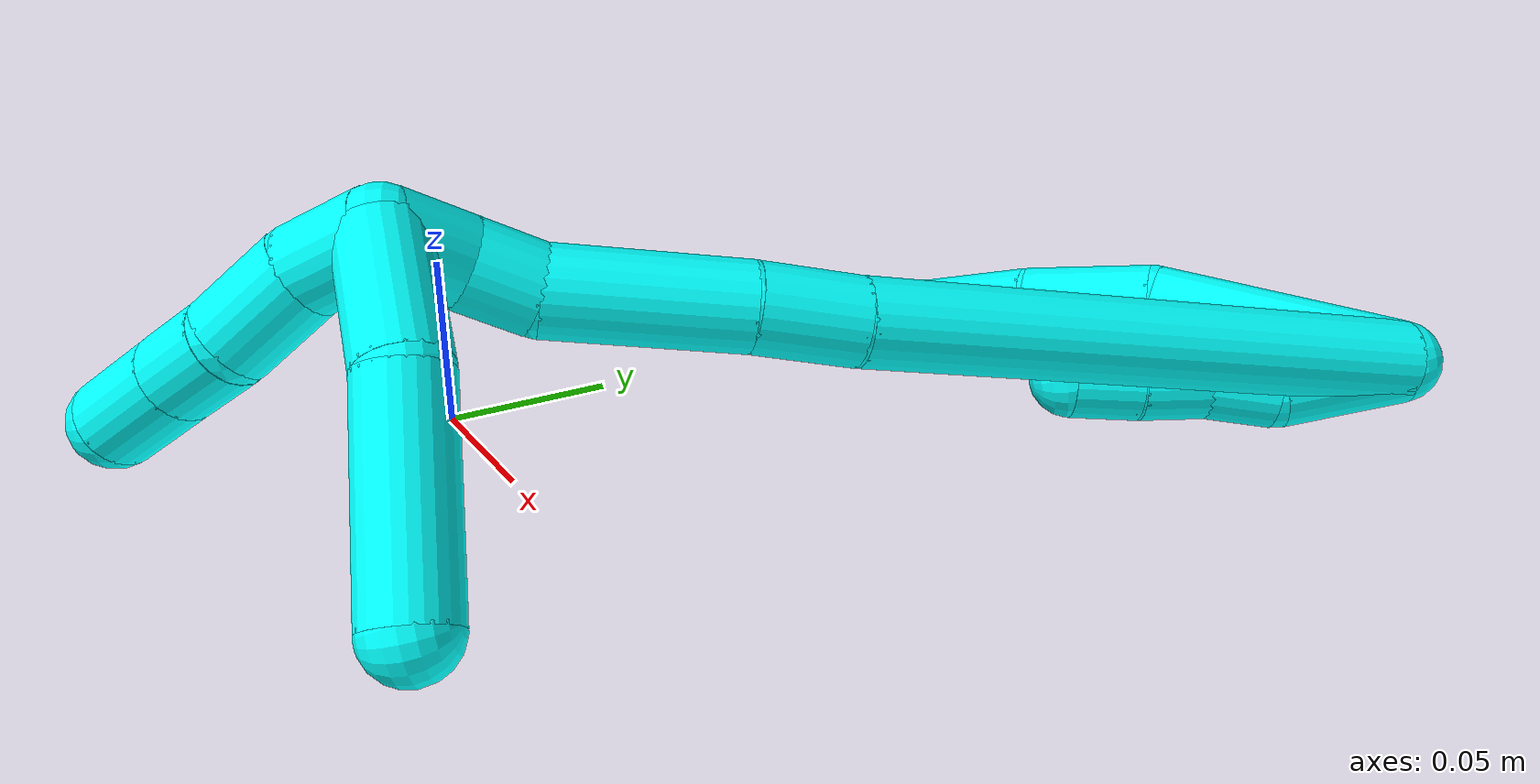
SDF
<sdf version="1.7">
 <world name="default">
  <model name="3">
   <static>0</static>
   <link name="3">
    <collision name="collision-cylinder-e_1_2_8">
     <pose>-0.018453 0.008707 -0.031408 -2.87117 -0.515175 2.18821</pose>
     <geometry><cylinder><radius>0.0125</radius><length>0.074908</length></cylinder></geometry>
     <surface>
      <friction><ode><mu>1.16</mu><mu2>1.16</mu2><slip1>0</slip1><slip2>0</slip2></ode></friction>
      <contact><ode><kp>1e+06</kp><kd>1</kd><max_vel>0</max_vel><min_depth>0.001</min_depth></ode></contact>
     </surface>
    </collision>
    <visual name="visual-cylinder-e_1_2_8">
     <pose>-0.018453 0.008707 -0.031408 -2.87117 -0.515175 2.18821</pose>
     <geometry><cylinder><radius>0.0125</radius><length>0.074908</length></cylinder></geometry>
     <material><ambient>0.003922 1 0.996078 1</ambient></material>
    </visual>
    <collision name="collision-cylinder-e_2_8_9">
     <pose>-0.042312 0.023733 -0.080801 -2.80368 -0.276342 1.36787</pose>
     <geometry><cylinder><radius>0.0125</radius><length>0.039629</length></cylinder></geometry>
     <surface>
      <friction><ode><mu>1.16</mu><mu2>1.16</mu2><slip1>0</slip1><slip2>0</slip2></ode></friction>
      <contact><ode><kp>1e+06</kp><kd>1</kd><max_vel>0</max_vel><min_depth>0.001</min_depth></ode></contact>
     </surface>
    </collision>
    <visual name="visual-cylinder-e_2_8_9">
     <pose>-0.042312 0.023733 -0.080801 -2.80368 -0.276342 1.36787</pose>
     <geometry><cylinder><radius>0.0125</radius><length>0.039629</length></cylinder></geometry>
     <material><ambient>0.003922 1 0.996078 1</ambient></material>
    </visual>
    <collision name="collision-cylinder-e_3_9_6">
     <pose>-0.051448 0.037731 -0.114328 -2.68275 -0.211912 0.854693</pose>
     <geometry><cylinder><radius>0.0125</radius><length>0.035463</length></cylinder></geometry>
     <surface>
      <friction><ode><mu>1.16</mu><mu2>1.16</mu2><slip1>0</slip1><slip2>0</slip2></ode></friction>
      <contact><ode><kp>1e+06</kp><kd>1</kd><max_vel>0</max_vel><min_depth>0.001</min_depth></ode></contact>
     </surface>
    </collision>
    <visual name="visual-cylinder-e_3_9_6">
     <pose>-0.051448 0.037731 -0.114328 -2.68275 -0.211912 0.854693</pose>
     <geometry><cylinder><radius>0.0125</radius><length>0.035463</length></cylinder></geometry>
     <material><ambient>0.003922 1 0.996078 1</ambient></material>
    </visual>
    <collision name="collision-cylinder-e_1_2_10">
     <pose>-2.6e-05 -0.000161 -0.019312 3.13324 -0.001372 -0.325381</pose>
     <geometry><cylinder><radius>0.0125</radius><length>0.038626</length></cylinder></geometry>
     <surface>
      <friction><ode><mu>1.16</mu><mu2>1.16</mu2><slip1>0</slip1><slip2>0</slip2></ode></friction>
      <contact><ode><kp>1e+06</kp><kd>1</kd><max_vel>0</max_vel><min_depth>0.001</min_depth></ode></contact>
     </surface>
    </collision>
    <visual name="visual-cylinder-e_1_2_10">
     <pose>-2.6e-05 -0.000161 -0.019312 3.13324 -0.001372 -0.325381</pose>
     <geometry><cylinder><radius>0.0125</radius><length>0.038626</length></cylinder></geometry>
     <material><ambient>0.003922 1 0.996078 1</ambient></material>
    </visual>
    <collision name="collision-cylinder-e_2_10_11">
     <pose>-0.003435 -0.000659 -0.048324 3.10695 -0.335293 -2.93758</pose>
     <geometry><cylinder><radius>0.0125</radius><length>0.020556</length></cylinder></geometry>
     <surface>
      <friction><ode><mu>1.16</mu><mu2>1.16</mu2><slip1>0</slip1><slip2>0</slip2></ode></friction>
      <contact><ode><kp>1e+06</kp><kd>1</kd><max_vel>0</max_vel><min_depth>0.001</min_depth></ode></contact>
     </surface>
    </collision>
    <visual name="visual-cylinder-e_2_10_11">
     <pose>-0.003435 -0.000659 -0.048324 3.10695 -0.335293 -2.93758</pose>
     <geometry><cylinder><radius>0.0125</radius><length>0.020556</length></cylinder></geometry>
     <material><ambient>0.003922 1 0.996078 1</ambient></material>
    </visual>
    <collision name="collision-cylinder-e_3_11_12">
     <pose>-0.008447 -0.001703 -0.068139 3.07177 -0.159413 -2.31716</pose>
     <geometry><cylinder><radius>0.0125</radius><length>0.02054</length></cylinder></geometry>
     <surface>
      <friction><ode><mu>1.16</mu><mu2>1.16</mu2><slip1>0</slip1><slip2>0</slip2></ode></friction>
      <contact><ode><kp>1e+06</kp><kd>1</kd><max_vel>0</max_vel><min_depth>0.001</min_depth></ode></contact>
     </surface>
    </collision>
    <visual name="visual-cylinder-e_3_11_12">
     <pose>-0.008447 -0.001703 -0.068139 3.07177 -0.159413 -2.31716</pose>
     <geometry><cylinder><radius>0.0125</radius><length>0.02054</length></cylinder></geometry>
     <material><ambient>0.003922 1 0.996078 1</ambient></material>
    </visual>
    <collision name="collision-cylinder-e_4_12_5">
     <pose>-0.012429 -0.0031 -0.088093 3.07156 -0.234038 -2.56235</pose>
     <geometry><cylinder><radius>0.0125</radius><length>0.020279</length></cylinder></geometry>
     <surface>
      <friction><ode><mu>1.16</mu><mu2>1.16</mu2><slip1>0</slip1><slip2>0</slip2></ode></friction>
      <contact><ode><kp>1e+06</kp><kd>1</kd><max_vel>0</max_vel><min_depth>0.001</min_depth></ode></contact>
     </surface>
    </collision>
    <visual name="visual-cylinder-e_4_12_5">
     <pose>-0.012429 -0.0031 -0.088093 3.07156 -0.234038 -2.56235</pose>
     <geometry><cylinder><radius>0.0125</radius><length>0.020279</length></cylinder></geometry>
     <material><ambient>0.003922 1 0.996078 1</ambient></material>
    </visual>
    <collision name="collision-cylinder-e_1_2_13">
     <pose>-0.01418 -0.029205 -0.080001 2.79157 -0.164986 -0.874781</pose>
     <geometry><cylinder><radius>0.0125</radius><length>0.172675</length></cylinder></geometry>
     <surface>
      <friction><ode><mu>1.16</mu><mu2>1.16</mu2><slip1>0</slip1><slip2>0</slip2></ode></friction>
      <contact><ode><kp>1e+06</kp><kd>1</kd><max_vel>0</max_vel><min_depth>0.001</min_depth></ode></contact>
     </surface>
    </collision>
    <visual name="visual-cylinder-e_1_2_13">
     <pose>-0.01418 -0.029205 -0.080001 2.79157 -0.164986 -0.874781</pose>
     <geometry><cylinder><radius>0.0125</radius><length>0.172675</length></cylinder></geometry>
     <material><ambient>0.003922 1 0.996078 1</ambient></material>
    </visual>
    <collision name="collision-cylinder-e_2_13_14">
     <pose>-0.031894 -0.063014 -0.173674 2.81675 -0.240244 -1.26973</pose>
     <geometry><cylinder><radius>0.0125</radius><length>0.029707</length></cylinder></geometry>
     <surface>
      <friction><ode><mu>1.16</mu><mu2>1.16</mu2><slip1>0</slip1><slip2>0</slip2></ode></friction>
      <contact><ode><kp>1e+06</kp><kd>1</kd><max_vel>0</max_vel><min_depth>0.001</min_depth></ode></contact>
     </surface>
    </collision>
    <visual name="visual-cylinder-e_2_13_14">
     <pose>-0.031894 -0.063014 -0.173674 2.81675 -0.240244 -1.26973</pose>
     <geometry><cylinder><radius>0.0125</radius><length>0.029707</length></cylinder></geometry>
     <material><ambient>0.003922 1 0.996078 1</ambient></material>
    </visual>
    <collision name="collision-cylinder-e_3_14_15">
     <pose>-0.041218 -0.073808 -0.213538 2.90953 -0.211891 -1.47923</pose>
     <geometry><cylinder><radius>0.0125</radius><length>0.055058</length></cylinder></geometry>
     <surface>
      <friction><ode><mu>1.16</mu><mu2>1.16</mu2><slip1>0</slip1><slip2>0</slip2></ode></friction>
      <contact><ode><kp>1e+06</kp><kd>1</kd><max_vel>0</max_vel><min_depth>0.001</min_depth></ode></contact>
     </surface>
    </collision>
    <visual name="visual-cylinder-e_3_14_15">
     <pose>-0.041218 -0.073808 -0.213538 2.90953 -0.211891 -1.47923</pose>
     <geometry><cylinder><radius>0.0125</radius><length>0.055058</length></cylinder></geometry>
     <material><ambient>0.003922 1 0.996078 1</ambient></material>
    </visual>
    <collision name="collision-cylinder-e_4_15_16">
     <pose>-0.051238 -0.084044 -0.248103 2.69147 -0.4269 -1.51611</pose>
     <geometry><cylinder><radius>0.0125</radius><length>0.020433</length></cylinder></geometry>
     <surface>
      <friction><ode><mu>1.16</mu><mu2>1.16</mu2><slip1>0</slip1><slip2>0</slip2></ode></friction>
      <contact><ode><kp>1e+06</kp><kd>1</kd><max_vel>0</max_vel><min_depth>0.001</min_depth></ode></contact>
     </surface>
    </collision>
    <visual name="visual-cylinder-e_4_15_16">
     <pose>-0.051238 -0.084044 -0.248103 2.69147 -0.4269 -1.51611</pose>
     <geometry><cylinder><radius>0.0125</radius><length>0.020433</length></cylinder></geometry>
     <material><ambient>0.003922 1 0.996078 1</ambient></material>
    </visual>
    <collision name="collision-cylinder-e_5_16_1">
     <pose>-0.058362 -0.095361 -0.264297 2.39264 -0.264696 -0.65319</pose>
     <geometry><cylinder><radius>0.0125</radius><length>0.022128</length></cylinder></geometry>
     <surface>
      <friction><ode><mu>1.16</mu><mu2>1.16</mu2><slip1>0</slip1><slip2>0</slip2></ode></friction>
      <contact><ode><kp>1e+06</kp><kd>1</kd><max_vel>0</max_vel><min_depth>0.001</min_depth></ode></contact>
     </surface>
    </collision>
    <visual name="visual-cylinder-e_5_16_1">
     <pose>-0.058362 -0.095361 -0.264297 2.39264 -0.264696 -0.65319</pose>
     <geometry><cylinder><radius>0.0125</radius><length>0.022128</length></cylinder></geometry>
     <material><ambient>0.003922 1 0.996078 1</ambient></material>
    </visual>
    <collision name="collision-cylinder-e_1_1_17">
     <pose>-0.042018 -0.107582 -0.270743 1.2998 1.30985 1.05672</pose>
     <geometry><cylinder><radius>0.0125</radius><length>0.039826</length></cylinder></geometry>
     <surface>
      <friction><ode><mu>1.16</mu><mu2>1.16</mu2><slip1>0</slip1><slip2>0</slip2></ode></friction>
      <contact><ode><kp>1e+06</kp><kd>1</kd><max_vel>0</max_vel><min_depth>0.001</min_depth></ode></contact>
     </surface>
    </collision>
    <visual name="visual-cylinder-e_1_1_17">
     <pose>-0.042018 -0.107582 -0.270743 1.2998 1.30985 1.05672</pose>
     <geometry><cylinder><radius>0.0125</radius><length>0.039826</length></cylinder></geometry>
     <material><ambient>0.003922 1 0.996078 1</ambient></material>
    </visual>
    <collision name="collision-cylinder-e_2_17_4">
     <pose>0.007134 -0.113346 -0.272494 2.88682 1.46321 2.85819</pose>
     <geometry><cylinder><radius>0.0125</radius><length>0.060174</length></cylinder></geometry>
     <surface>
      <friction><ode><mu>1.16</mu><mu2>1.16</mu2><slip1>0</slip1><slip2>0</slip2></ode></friction>
      <contact><ode><kp>1e+06</kp><kd>1</kd><max_vel>0</max_vel><min_depth>0.001</min_depth></ode></contact>
     </surface>
    </collision>
    <visual name="visual-cylinder-e_2_17_4">
     <pose>0.007134 -0.113346 -0.272494 2.88682 1.46321 2.85819</pose>
     <geometry><cylinder><radius>0.0125</radius><length>0.060174</length></cylinder></geometry>
     <material><ambient>0.003922 1 0.996078 1</ambient></material>
    </visual>
    <collision name="collision-cylinder-e_1_1_18">
     <pose>-0.060206 -0.09797 -0.283228 -2.7443 0.086952 -0.425681</pose>
     <geometry><cylinder><radius>0.0125</radius><length>0.024187</length></cylinder></geometry>
     <surface>
      <friction><ode><mu>1.16</mu><mu2>1.16</mu2><slip1>0</slip1><slip2>0</slip2></ode></friction>
      <contact><ode><kp>1e+06</kp><kd>1</kd><max_vel>0</max_vel><min_depth>0.001</min_depth></ode></contact>
     </surface>
    </collision>
    <visual name="visual-cylinder-e_1_1_18">
     <pose>-0.060206 -0.09797 -0.283228 -2.7443 0.086952 -0.425681</pose>
     <geometry><cylinder><radius>0.0125</radius><length>0.024187</length></cylinder></geometry>
     <material><ambient>0.003922 1 0.996078 1</ambient></material>
    </visual>
    <collision name="collision-cylinder-e_2_18_19">
     <pose>-0.053802 -0.089002 -0.30601 -2.78811 0.406382 -1.71317</pose>
     <geometry><cylinder><radius>0.0125</radius><length>0.027091</length></cylinder></geometry>
     <surface>
      <friction><ode><mu>1.16</mu><mu2>1.16</mu2><slip1>0</slip1><slip2>0</slip2></ode></friction>
      <contact><ode><kp>1e+06</kp><kd>1</kd><max_vel>0</max_vel><min_depth>0.001</min_depth></ode></contact>
     </surface>
    </collision>
    <visual name="visual-cylinder-e_2_18_19">
     <pose>-0.053802 -0.089002 -0.30601 -2.78811 0.406382 -1.71317</pose>
     <geometry><cylinder><radius>0.0125</radius><length>0.027091</length></cylinder></geometry>
     <material><ambient>0.003922 1 0.996078 1</ambient></material>
    </visual>
    <collision name="collision-cylinder-e_3_19_20">
     <pose>-0.047015 -0.079012 -0.326565 -2.57247 0.135076 -0.454517</pose>
     <geometry><cylinder><radius>0.0125</radius><length>0.021283</length></cylinder></geometry>
     <surface>
      <friction><ode><mu>1.16</mu><mu2>1.16</mu2><slip1>0</slip1><slip2>0</slip2></ode></friction>
      <contact><ode><kp>1e+06</kp><kd>1</kd><max_vel>0</max_vel><min_depth>0.001</min_depth></ode></contact>
     </surface>
    </collision>
    <visual name="visual-cylinder-e_3_19_20">
     <pose>-0.047015 -0.079012 -0.326565 -2.57247 0.135076 -0.454517</pose>
     <geometry><cylinder><radius>0.0125</radius><length>0.021283</length></cylinder></geometry>
     <material><ambient>0.003922 1 0.996078 1</ambient></material>
    </visual>
    <collision name="collision-cylinder-e_4_20_3">
     <pose>-0.043581 -0.065985 -0.346862 -2.56983 0.146336 -0.48878</pose>
     <geometry><cylinder><radius>0.0125</radius><length>0.02744</length></cylinder></geometry>
     <surface>
      <friction><ode><mu>1.16</mu><mu2>1.16</mu2><slip1>0</slip1><slip2>0</slip2></ode></friction>
      <contact><ode><kp>1e+06</kp><kd>1</kd><max_vel>0</max_vel><min_depth>0.001</min_depth></ode></contact>
     </surface>
    </collision>
    <visual name="visual-cylinder-e_4_20_3">
     <pose>-0.043581 -0.065985 -0.346862 -2.56983 0.146336 -0.48878</pose>
     <geometry><cylinder><radius>0.0125</radius><length>0.02744</length></cylinder></geometry>
     <material><ambient>0.003922 1 0.996078 1</ambient></material>
    </visual>
    <collision name="collision-sphere-3">
     <pose>-0.04158 -0.05864 -0.358277 0 -0 0</pose>
     <geometry><sphere><radius>0.0125</radius></sphere></geometry>
     <surface>
      <friction><ode><mu>1.16</mu><mu2>1.16</mu2><slip1>0</slip1><slip2>0</slip2></ode></friction>
      <contact><ode><kp>1e+06</kp><kd>1</kd><max_vel>0</max_vel><min_depth>0.001</min_depth></ode></contact>
     </surface>
    </collision>
    <visual name="visual-sphere-3">
     <pose>-0.04158 -0.05864 -0.358277 0 -0 0</pose>
     <geometry><sphere><radius>0.0125</radius></sphere></geometry>
     <material><ambient>0.003922 1 0.996078 1</ambient></material>
    </visual>
    <collision name="collision-sphere-20">
     <pose>-0.045582 -0.07333 -0.335448 0 -0 0</pose>
     <geometry><sphere><radius>0.0125</radius></sphere></geometry>
     <surface>
      <friction><ode><mu>1.16</mu><mu2>1.16</mu2><slip1>0</slip1><slip2>0</slip2></ode></friction>
      <contact><ode><kp>1e+06</kp><kd>1</kd><max_vel>0</max_vel><min_depth>0.001</min_depth></ode></contact>
     </surface>
    </collision>
    <visual name="visual-sphere-20">
     <pose>-0.045582 -0.07333 -0.335448 0 -0 0</pose>
     <geometry><sphere><radius>0.0125</radius></sphere></geometry>
     <material><ambient>0.003922 1 0.996078 1</ambient></material>
    </visual>
    <collision name="collision-sphere-19">
     <pose>-0.048448 -0.084695 -0.317683 0 -0 0</pose>
     <geometry><sphere><radius>0.0125</radius></sphere></geometry>
     <surface>
      <friction><ode><mu>1.16</mu><mu2>1.16</mu2><slip1>0</slip1><slip2>0</slip2></ode></friction>
      <contact><ode><kp>1e+06</kp><kd>1</kd><max_vel>0</max_vel><min_depth>0.001</min_depth></ode></contact>
     </surface>
    </collision>
    <visual name="visual-sphere-19">
     <pose>-0.048448 -0.084695 -0.317683 0 -0 0</pose>
     <geometry><sphere><radius>0.0125</radius></sphere></geometry>
     <material><ambient>0.003922 1 0.996078 1</ambient></material>
    </visual>
    <collision name="collision-sphere-11">
     <pose>-0.006817 -0.000995 -0.058024 0 -0 0</pose>
     <geometry><sphere><radius>0.0125</radius></sphere></geometry>
     <surface>
      <friction><ode><mu>1.16</mu><mu2>1.16</mu2><slip1>0</slip1><slip2>0</slip2></ode></friction>
      <contact><ode><kp>1e+06</kp><kd>1</kd><max_vel>0</max_vel><min_depth>0.001</min_depth></ode></contact>
     </surface>
    </collision>
    <visual name="visual-sphere-11">
     <pose>-0.006817 -0.000995 -0.058024 0 -0 0</pose>
     <geometry><sphere><radius>0.0125</radius></sphere></geometry>
     <material><ambient>0.003922 1 0.996078 1</ambient></material>
    </visual>
    <collision name="collision-sphere-10">
     <pose>-5.3e-05 -0.000323 -0.038624 0 -0 0</pose>
     <geometry><sphere><radius>0.0125</radius></sphere></geometry>
     <surface>
      <friction><ode><mu>1.16</mu><mu2>1.16</mu2><slip1>0</slip1><slip2>0</slip2></ode></friction>
      <contact><ode><kp>1e+06</kp><kd>1</kd><max_vel>0</max_vel><min_depth>0.001</min_depth></ode></contact>
     </surface>
    </collision>
    <visual name="visual-sphere-10">
     <pose>-5.3e-05 -0.000323 -0.038624 0 -0 0</pose>
     <geometry><sphere><radius>0.0125</radius></sphere></geometry>
     <material><ambient>0.003922 1 0.996078 1</ambient></material>
    </visual>
    <collision name="collision-sphere-6">
     <pose>-0.055177 0.045409 -0.12987 0 -0 0</pose>
     <geometry><sphere><radius>0.0125</radius></sphere></geometry>
     <surface>
      <friction><ode><mu>1.16</mu><mu2>1.16</mu2><slip1>0</slip1><slip2>0</slip2></ode></friction>
      <contact><ode><kp>1e+06</kp><kd>1</kd><max_vel>0</max_vel><min_depth>0.001</min_depth></ode></contact>
     </surface>
    </collision>
    <visual name="visual-sphere-6">
     <pose>-0.055177 0.045409 -0.12987 0 -0 0</pose>
     <geometry><sphere><radius>0.0125</radius></sphere></geometry>
     <material><ambient>0.003922 1 0.996078 1</ambient></material>
    </visual>
    <collision name="collision-sphere-9">
     <pose>-0.047718 0.030053 -0.098786 0 -0 0</pose>
     <geometry><sphere><radius>0.0125</radius></sphere></geometry>
     <surface>
      <friction><ode><mu>1.16</mu><mu2>1.16</mu2><slip1>0</slip1><slip2>0</slip2></ode></friction>
      <contact><ode><kp>1e+06</kp><kd>1</kd><max_vel>0</max_vel><min_depth>0.001</min_depth></ode></contact>
     </surface>
    </collision>
    <visual name="visual-sphere-9">
     <pose>-0.047718 0.030053 -0.098786 0 -0 0</pose>
     <geometry><sphere><radius>0.0125</radius></sphere></geometry>
     <material><ambient>0.003922 1 0.996078 1</ambient></material>
    </visual>
    <collision name="collision-sphere-2">
     <geometry><sphere><radius>0.0125</radius></sphere></geometry>
     <surface>
      <friction><ode><mu>1.16</mu><mu2>1.16</mu2><slip1>0</slip1><slip2>0</slip2></ode></friction>
      <contact><ode><kp>1e+06</kp><kd>1</kd><max_vel>0</max_vel><min_depth>0.001</min_depth></ode></contact>
     </surface>
    </collision>
    <visual name="visual-sphere-2">
     <geometry><sphere><radius>0.0125</radius></sphere></geometry>
     <material><ambient>0.003922 1 0.996078 1</ambient></material>
    </visual>
    <collision name="collision-sphere-8">
     <pose>-0.036906 0.017414 -0.062817 0 -0 0</pose>
     <geometry><sphere><radius>0.0125</radius></sphere></geometry>
     <surface>
      <friction><ode><mu>1.16</mu><mu2>1.16</mu2><slip1>0</slip1><slip2>0</slip2></ode></friction>
      <contact><ode><kp>1e+06</kp><kd>1</kd><max_vel>0</max_vel><min_depth>0.001</min_depth></ode></contact>
     </surface>
    </collision>
    <visual name="visual-sphere-8">
     <pose>-0.036906 0.017414 -0.062817 0 -0 0</pose>
     <geometry><sphere><radius>0.0125</radius></sphere></geometry>
     <material><ambient>0.003922 1 0.996078 1</ambient></material>
    </visual>
    <collision name="collision-sphere-12">
     <pose>-0.010077 -0.00241 -0.078254 0 -0 0</pose>
     <geometry><sphere><radius>0.0125</radius></sphere></geometry>
     <surface>
      <friction><ode><mu>1.16</mu><mu2>1.16</mu2><slip1>0</slip1><slip2>0</slip2></ode></friction>
      <contact><ode><kp>1e+06</kp><kd>1</kd><max_vel>0</max_vel><min_depth>0.001</min_depth></ode></contact>
     </surface>
    </collision>
    <visual name="visual-sphere-12">
     <pose>-0.010077 -0.00241 -0.078254 0 -0 0</pose>
     <geometry><sphere><radius>0.0125</radius></sphere></geometry>
     <material><ambient>0.003922 1 0.996078 1</ambient></material>
    </visual>
    <collision name="collision-sphere-5">
     <pose>-0.01478 -0.00379 -0.097931 0 -0 0</pose>
     <geometry><sphere><radius>0.0125</radius></sphere></geometry>
     <surface>
      <friction><ode><mu>1.16</mu><mu2>1.16</mu2><slip1>0</slip1><slip2>0</slip2></ode></friction>
      <contact><ode><kp>1e+06</kp><kd>1</kd><max_vel>0</max_vel><min_depth>0.001</min_depth></ode></contact>
     </surface>
    </collision>
    <visual name="visual-sphere-5">
     <pose>-0.01478 -0.00379 -0.097931 0 -0 0</pose>
     <geometry><sphere><radius>0.0125</radius></sphere></geometry>
     <material><ambient>0.003922 1 0.996078 1</ambient></material>
    </visual>
    <collision name="collision-sphere-13">
     <pose>-0.02836 -0.05841 -0.160002 0 -0 0</pose>
     <geometry><sphere><radius>0.0125</radius></sphere></geometry>
     <surface>
      <friction><ode><mu>1.16</mu><mu2>1.16</mu2><slip1>0</slip1><slip2>0</slip2></ode></friction>
      <contact><ode><kp>1e+06</kp><kd>1</kd><max_vel>0</max_vel><min_depth>0.001</min_depth></ode></contact>
     </surface>
    </collision>
    <visual name="visual-sphere-13">
     <pose>-0.02836 -0.05841 -0.160002 0 -0 0</pose>
     <geometry><sphere><radius>0.0125</radius></sphere></geometry>
     <material><ambient>0.003922 1 0.996078 1</ambient></material>
    </visual>
    <collision name="collision-sphere-14">
     <pose>-0.035428 -0.067619 -0.187346 0 -0 0</pose>
     <geometry><sphere><radius>0.0125</radius></sphere></geometry>
     <surface>
      <friction><ode><mu>1.16</mu><mu2>1.16</mu2><slip1>0</slip1><slip2>0</slip2></ode></friction>
      <contact><ode><kp>1e+06</kp><kd>1</kd><max_vel>0</max_vel><min_depth>0.001</min_depth></ode></contact>
     </surface>
    </collision>
    <visual name="visual-sphere-14">
     <pose>-0.035428 -0.067619 -0.187346 0 -0 0</pose>
     <geometry><sphere><radius>0.0125</radius></sphere></geometry>
     <material><ambient>0.003922 1 0.996078 1</ambient></material>
    </visual>
    <collision name="collision-sphere-15">
     <pose>-0.047008 -0.079998 -0.23973 0 -0 0</pose>
     <geometry><sphere><radius>0.0125</radius></sphere></geometry>
     <surface>
      <friction><ode><mu>1.16</mu><mu2>1.16</mu2><slip1>0</slip1><slip2>0</slip2></ode></friction>
      <contact><ode><kp>1e+06</kp><kd>1</kd><max_vel>0</max_vel><min_depth>0.001</min_depth></ode></contact>
     </surface>
    </collision>
    <visual name="visual-sphere-15">
     <pose>-0.047008 -0.079998 -0.23973 0 -0 0</pose>
     <geometry><sphere><radius>0.0125</radius></sphere></geometry>
     <material><ambient>0.003922 1 0.996078 1</ambient></material>
    </visual>
    <collision name="collision-sphere-16">
     <pose>-0.055468 -0.08809 -0.256476 0 -0 0</pose>
     <geometry><sphere><radius>0.0125</radius></sphere></geometry>
     <surface>
      <friction><ode><mu>1.16</mu><mu2>1.16</mu2><slip1>0</slip1><slip2>0</slip2></ode></friction>
      <contact><ode><kp>1e+06</kp><kd>1</kd><max_vel>0</max_vel><min_depth>0.001</min_depth></ode></contact>
     </surface>
    </collision>
    <visual name="visual-sphere-16">
     <pose>-0.055468 -0.08809 -0.256476 0 -0 0</pose>
     <geometry><sphere><radius>0.0125</radius></sphere></geometry>
     <material><ambient>0.003922 1 0.996078 1</ambient></material>
    </visual>
    <collision name="collision-sphere-1">
     <pose>-0.061257 -0.102632 -0.272118 0 -0 0</pose>
     <geometry><sphere><radius>0.0125</radius></sphere></geometry>
     <surface>
      <friction><ode><mu>1.16</mu><mu2>1.16</mu2><slip1>0</slip1><slip2>0</slip2></ode></friction>
      <contact><ode><kp>1e+06</kp><kd>1</kd><max_vel>0</max_vel><min_depth>0.001</min_depth></ode></contact>
     </surface>
    </collision>
    <visual name="visual-sphere-1">
     <pose>-0.061257 -0.102632 -0.272118 0 -0 0</pose>
     <geometry><sphere><radius>0.0125</radius></sphere></geometry>
     <material><ambient>0.003922 1 0.996078 1</ambient></material>
    </visual>
    <collision name="collision-sphere-18">
     <pose>-0.059156 -0.093309 -0.294337 0 -0 0</pose>
     <geometry><sphere><radius>0.0125</radius></sphere></geometry>
     <surface>
      <friction><ode><mu>1.16</mu><mu2>1.16</mu2><slip1>0</slip1><slip2>0</slip2></ode></friction>
      <contact><ode><kp>1e+06</kp><kd>1</kd><max_vel>0</max_vel><min_depth>0.001</min_depth></ode></contact>
     </surface>
    </collision>
    <visual name="visual-sphere-18">
     <pose>-0.059156 -0.093309 -0.294337 0 -0 0</pose>
     <geometry><sphere><radius>0.0125</radius></sphere></geometry>
     <material><ambient>0.003922 1 0.996078 1</ambient></material>
    </visual>
    <collision name="collision-sphere-17">
     <pose>-0.022779 -0.112532 -0.269368 0 -0 0</pose>
     <geometry><sphere><radius>0.0125</radius></sphere></geometry>
     <surface>
      <friction><ode><mu>1.16</mu><mu2>1.16</mu2><slip1>0</slip1><slip2>0</slip2></ode></friction>
      <contact><ode><kp>1e+06</kp><kd>1</kd><max_vel>0</max_vel><min_depth>0.001</min_depth></ode></contact>
     </surface>
    </collision>
    <visual name="visual-sphere-17">
     <pose>-0.022779 -0.112532 -0.269368 0 -0 0</pose>
     <geometry><sphere><radius>0.0125</radius></sphere></geometry>
     <material><ambient>0.003922 1 0.996078 1</ambient></material>
    </visual>
    <collision name="collision-sphere-4">
     <pose>0.037047 -0.11416 -0.275621 0 -0 0</pose>
     <geometry><sphere><radius>0.0125</radius></sphere></geometry>
     <surface>
      <friction><ode><mu>1.16</mu><mu2>1.16</mu2><slip1>0</slip1><slip2>0</slip2></ode></friction>
      <contact><ode><kp>1e+06</kp><kd>1</kd><max_vel>0</max_vel><min_depth>0.001</min_depth></ode></contact>
     </surface>
    </collision>
    <visual name="visual-sphere-4">
     <pose>0.037047 -0.11416 -0.275621 0 -0 0</pose>
     <geometry><sphere><radius>0.0125</radius></sphere></geometry>
     <material><ambient>0.003922 1 0.996078 1</ambient></material>
    </visual>
    <inertial>
     <pose>-0.026318 -0.041828 -0.153294 0 -0 0</pose>
     <mass>0.75</mass>
     <inertia>
      <ixx>-5.1e-05</ixx>
      <ixy>0</ixy>
      <ixz>0</ixz>
      <iyy>-0.000527</iyy>
      <iyz>0</iyz>
      <izz>0.000164</izz>
     </inertia>
    </inertial>
   </link>
   <pose>0.145532 0.245855 0.018562 -1.29446 0.891647 -0.216833</pose>
  </model>
 </world>
</sdf>
